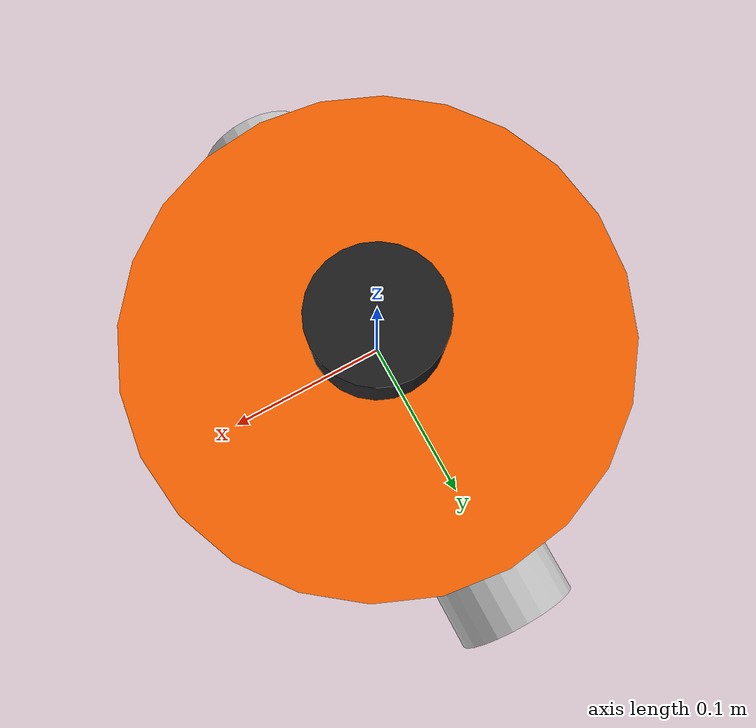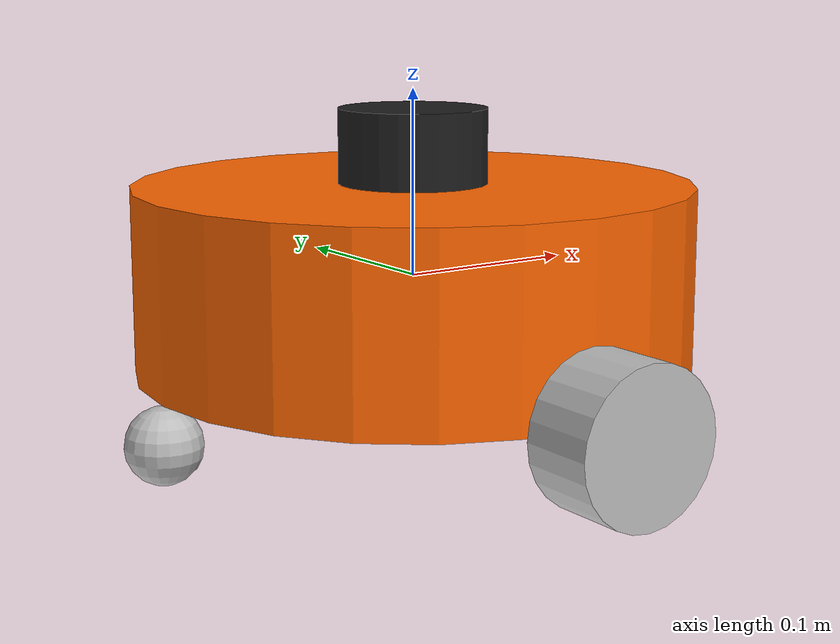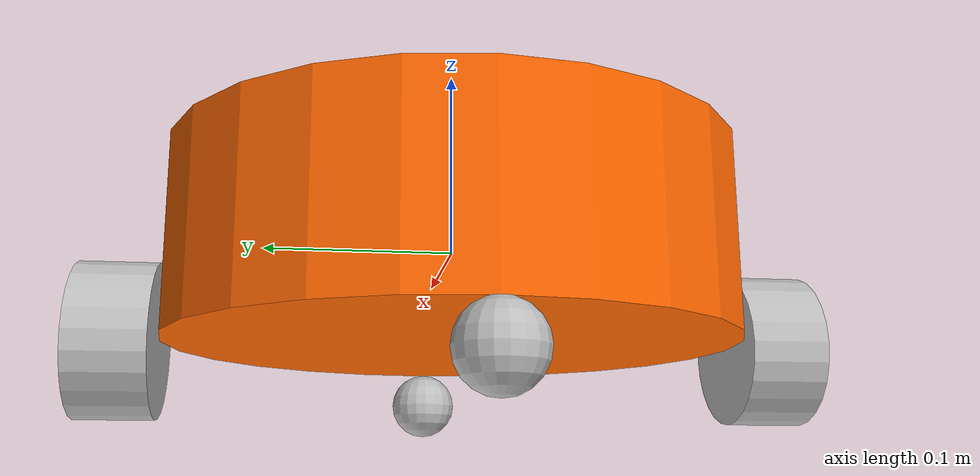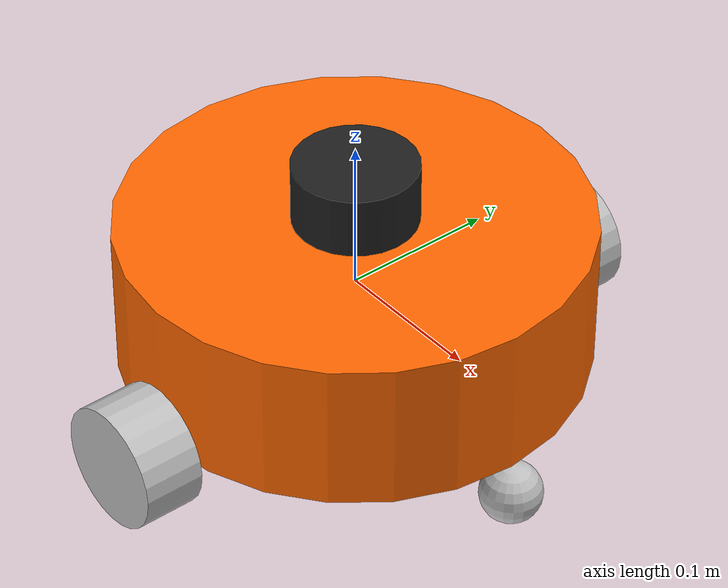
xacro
<?xml version="1.0"?>
<robot name="deeptuuk" xmlns:xacro="http://www.ros.org/wiki/xacro">
    <xacro:include filename="my_pi.xacro"/>
    <xacro:include filename="rplidar.xacro" />

	<xacro:property name="rplidar_offset_x" value="0" />
	<xacro:property name="rplidar_offset_y" value="0" />
	<xacro:property name="rplidar_offset_z" value="0.07" />

	<my_robot/>

	<!-- rplidar -->
	<joint name="rplidar_joint" type="fixed">
		<origin xyz="${rplidar_offset_x} ${rplidar_offset_y} ${rplidar_offset_z}" rpy="0 0 0" />
		<parent link="base_link"/>
		<child link="laser_link"/>
	</joint>
	<rplidar/>

    <gazebo>
    <plugin name="differential_drive_controller" filename="libgazebo_ros_diff_drive.so">
        <alwaysOn>true</alwaysOn>
        <updateRate>100</updateRate>
        <leftJoint>base_to_wheel_joint_left</leftJoint>
        <rightJoint>base_to_wheel_joint_righ</rightJoint>
        <wheelSeparation>0.34</wheelSeparation>
        <wheelDiameter>0.08</wheelDiameter>
        <torque>100</torque>
        <commandTopic>cmd_vel</commandTopic>
        <odometryTopic>odom</odometryTopic>
        <odometryFrame>odom</odometryFrame>
        <robotBaseFrame>base_link</robotBaseFrame>
    </plugin>
    </gazebo>
</robot>

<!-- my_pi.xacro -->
<robot xmlns:xacro="http://www.ros.org/wiki/xacro">

    <xacro:property name="PI" value="3.14159"/>
    <xacro:property name="base_l" value="0.1"/>
    <xacro:property name="base_r" value="0.15"/>

    <xacro:property name="wheel_l" value="0.04"/>
    <xacro:property name="wheel_r" value="0.04"/>

    <xacro:property name="fix_r" value="0.02"/>

    <xacro:macro name="base_to_wheel_joint" params="parent number x_loc y_loc z_loc">
        <joint name="base_to_wheel_joint_${number}" type="continuous">
            <origin xyz="${x_loc} ${y_loc} ${z_loc}" rpy="0 0 0" />
            <parent link="${parent}"/>
            <child link="wheel_${number}" />
            <axis xyz="0 1 0"/>
        </joint>

        <link name="wheel_${number}">
            <visual>
                <origin xyz=" 0 0 0" rpy="${PI/2} 0 0" />
                <geometry>
                    <cylinder radius="${wheel_r}" length = "${wheel_l}"/>
                </geometry>
                <material name="gray">
                    <color rgba="0.75 0.75 0.75 1"/>
                </material>
            </visual>

            <inertial>
                <mass value="1" />
                <origin xyz="0 0 0" />
                <inertia ixx="0.00053" ixy="0.00000" ixz="0.00000"
                        iyy="0.00053" iyz="0.00000" izz="0.00080" />
            </inertial>

            <collision>
                <origin xyz="0 0 0" rpy="${PI/2} 0 0" />
                <geometry>
                    <cylinder radius="${wheel_r}" length = "${wheel_l}"/>
                </geometry>
            </collision>
        </link>

        <gazebo reference="wheel_${number}">
            <material>Gazebo/Gray</material>
            <mu1>1000</mu1>
            <mu2>1000</mu2>
        </gazebo>

        <transmission name="simple_trans_${number}">
            <type>transmission_interface/SimpleTransmission</type>
            <joint name="base_to_wheel_joint_${number}" />
            <actuator name="actuator_${number}">
                <mechanicalReduction>1</mechanicalReduction>
                <hardwareInterface>VelocityJointInterface</hardwareInterface>
            </actuator>
        </transmission>
    </xacro:macro>

    <xacro:macro name="base_to_fix_joint" params="parent number x_loc y_loc z_loc">
        <joint name="base_to_wheel_fix_${number}" type="fixed">
            <origin xyz="${x_loc} ${y_loc} ${z_loc}" rpy="0 0 0" />
            <parent link="${parent}"/>
            <child link="fix_${number}" />
        </joint>

        <link name="fix_${number}">
            <visual>
                <origin xyz=" 0 0 0" rpy="0 0 0" />
                <geometry>
                    <sphere radius="${fix_r}"/>
                </geometry>
                <material name="gray">
                    <color rgba="0.75 0.75 0.75 1"/>
                </material>
            </visual>

            <inertial>
                <mass value="1" />
                <origin xyz="0 0 0" />
                <inertia ixx="0.00053" ixy="0.00000" ixz="0.00000"
                        iyy="0.00053" iyz="0.00000" izz="0.00080" />
            </inertial>

            <collision>
                <origin xyz="0 0 0" rpy="0 0 0" />
                <geometry>
                    <sphere radius="${fix_r}"/>
                </geometry>
            </collision>
        </link>

        <gazebo reference="fix_${number}">
            <material>Gazebo/Gray</material>
            <mu1>0.0</mu1>
            <mu2>0.0</mu2>
        </gazebo>
    </xacro:macro>

    <xacro:macro name="my_robot">
        <link name="base_link">
            <visual>
                <origin xyz=" 0 0 0" rpy="0 0 0" />
                <geometry>
                    <cylinder radius="${base_r}" length = "${base_l}"/>
                </geometry>
                <material name="yellow">
                    <color rgba="1 0.4 0 1"/>
                </material>
            </visual>

            <inertial>
                <mass value="5" />
                <origin xyz="0 0 0" />
                <inertia ixx="0.02083" ixy="0.00000" ixz="0.00000"
                        iyy="0.04166" iyz="0.00000" izz="0.05416" />
            </inertial>

            <collision>
                <origin xyz="0 0 0" rpy="0 0 0" />
                <geometry>
                    <cylinder radius="${base_r}" length = "${base_l}"/>
                </geometry>
            </collision>
        </link>

        <gazebo reference="base_link">
            <material>Gazebo/Yellow</material>
        </gazebo>

        <base_to_wheel_joint parent="base_link" number="left" x_loc="0" y_loc="${base_r + wheel_l/2}" z_loc="${-base_l/2}"/>
        <base_to_wheel_joint parent="base_link" number="righ" x_loc="0" y_loc="${-base_r - wheel_l/2}" z_loc="${-base_l/2}"/>
        <base_to_fix_joint parent="base_link" number="front" x_loc="${base_r}" y_loc="0" z_loc="${-base_l/2 - fix_r}"/>
        <base_to_fix_joint parent="base_link" number="back" x_loc="${-base_r}" y_loc="0" z_loc="${-base_l/2 - fix_r}"/>

    </xacro:macro>
</robot>

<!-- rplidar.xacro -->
<robot xmlns:xacro="http://www.ros.org/wiki/xacro" name="laser">

	<xacro:macro name="rplidar">
		<link name="laser_link">
			<inertial>
				<mass value="0.1" />
				<origin xyz="0 0 0" />
				<inertia ixx="0.01" ixy="0.0" ixz="0.0"
						 iyy="0.01" iyz="0.0"
						 izz="0.01" />
			</inertial>

			<visual>
				<origin xyz=" 0 0 0 " rpy="0 0 0" />
				<geometry>
					<cylinder length="0.04" radius="0.04"/>
				</geometry>
				<material name="black"/>
			</visual>

			<collision>
				<origin xyz="0.0 0.0 0.0" rpy="0 0 0" />
				<geometry>
					<cylinder length="0.04" radius="0.04"/>
				</geometry>
			</collision>
		</link>

		<gazebo reference="laser_link">
			<material>Gazebo/Black</material>
		</gazebo>

		<gazebo reference="laser_link">
			<sensor type="ray" name="rplidar">
				<pose>0 0 0 0 0 0</pose>
				<visualize>false</visualize>
				<update_rate>5.5</update_rate>
				<ray>
					<scan>
						<horizontal>
							<samples>360</samples>
							<resolution>1</resolution>
							<min_angle>-3</min_angle>
							<max_angle>3</max_angle>
						</horizontal>
					</scan>
					<range>
						<min>0.15</min>
						<max>6.0</max>
						<resolution>0.01</resolution>
					</range>
					<noise>
						<type>gaussian</type>
						<mean>0.0</mean>
						<stddev>0.01</stddev>
					</noise>
				</ray>
				<plugin name="gazebo_rplidar" filename="libgazebo_ros_laser.so">
					<topicName>/scan</topicName>
					<frameName>laser_link</frameName>
				</plugin>
			</sensor>
		</gazebo>
	</xacro:macro>

</robot>
